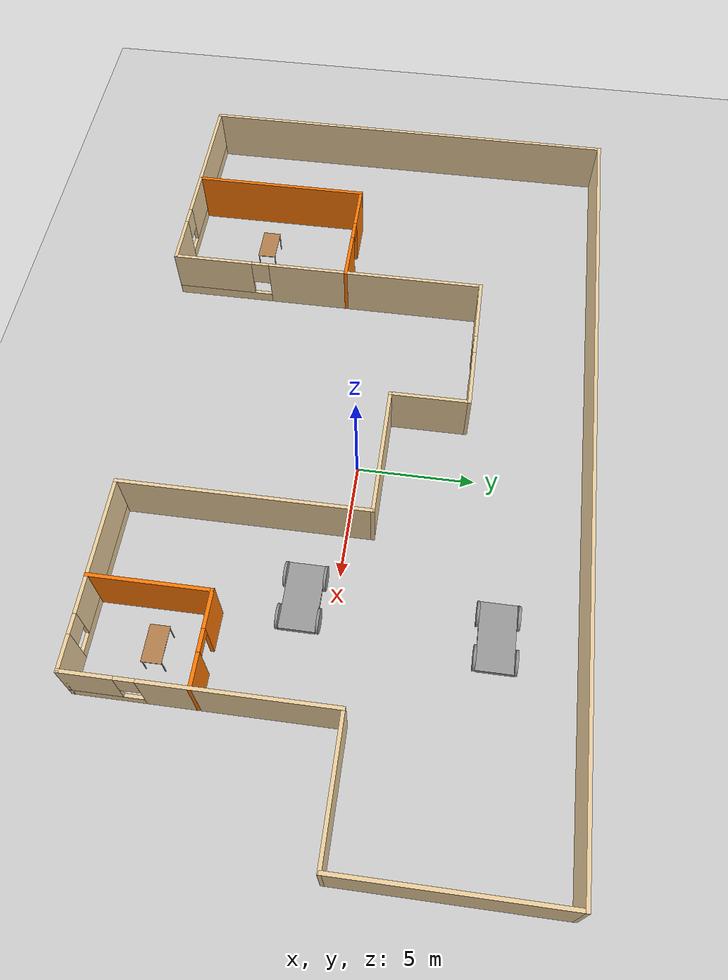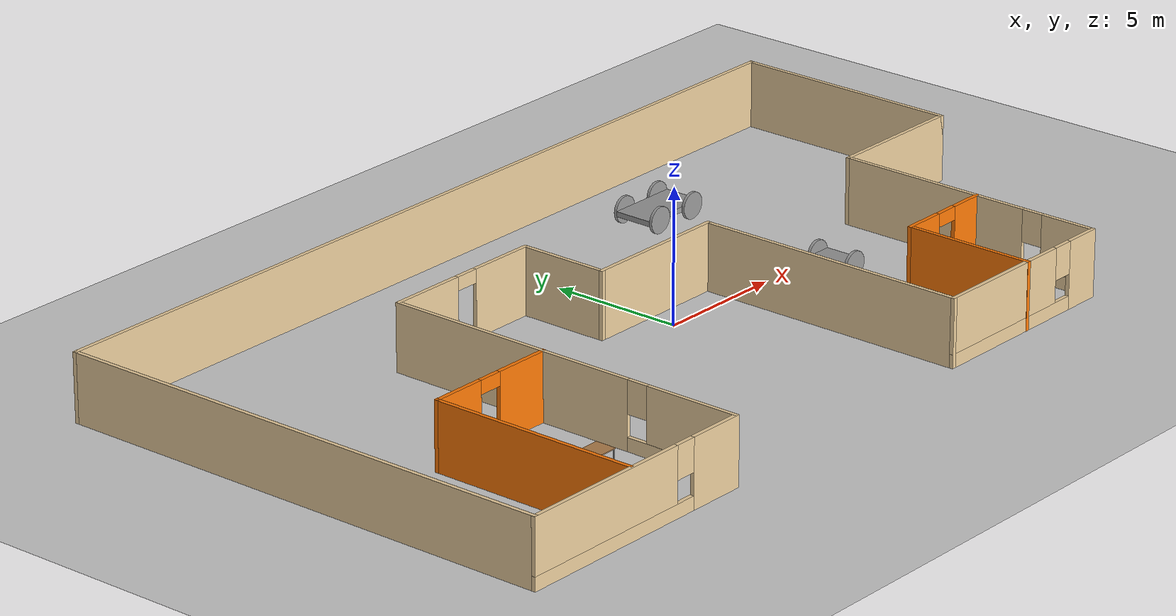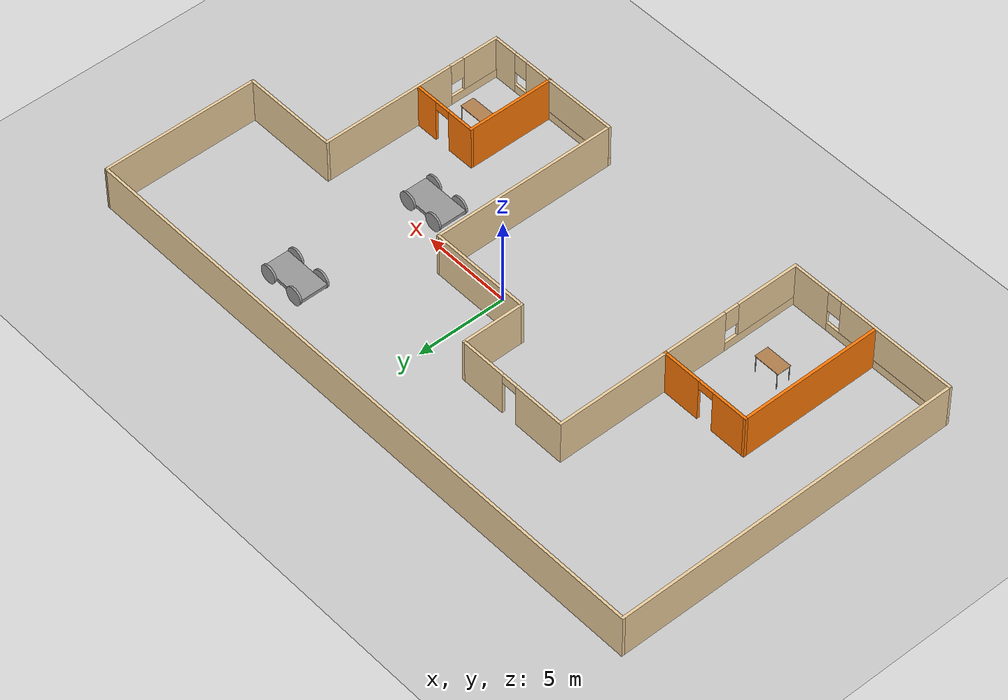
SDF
<sdf version="1.6">
 <world name="default">
  <model name="ground_plane">
   <static>1</static>
   <link name="link">
    <collision name="collision">
     <geometry><plane><normal>0 0 1</normal><size>100 100</size></plane></geometry>
     <surface><friction><ode><mu>100</mu><mu2>50</mu2></ode></friction></surface>
    </collision>
    <visual name="visual">
     <cast_shadows>0</cast_shadows>
     <geometry><plane><normal>0 0 1</normal><size>100 100</size></plane></geometry>
     <material>
      <script><uri>file://media/materials/scripts/gazebo.material</uri><name>Gazebo/Grey</name></script>
     </material>
    </visual>
   </link>
  </model>
  <light name="sun" type="directional">
   <pose>0 0 10 0 -0 0</pose>
   <diffuse>0.8 0.8 0.8 1</diffuse>
   <specular>0.2 0.2 0.2 1</specular>
   <attenuation>
    <range>1000</range>
    <constant>0.9</constant>
    <linear>0.01</linear>
    <quadratic>0.001</quadratic>
   </attenuation>
   <direction>-0.5 0.1 -0.9</direction>
  </light>
  <gravity>0 0 -9.8</gravity>
  <magnetic_field>6e-06 2.3e-05 -4.2e-05</magnetic_field>
  <atmosphere type="adiabatic"/>
  <physics name="default_physics" default="0" type="ode">
   <max_step_size>0.001</max_step_size>
   <real_time_factor>1</real_time_factor>
   <real_time_update_rate>1000</real_time_update_rate>
  </physics>
  <scene><ambient>0.4 0.4 0.4 1</ambient><background>0.7 0.7 0.7 1</background><shadows>1</shadows></scene>
  <spherical_coordinates>
   <surface_model>EARTH_WGS84</surface_model>
   <latitude_deg>0</latitude_deg>
   <longitude_deg>0</longitude_deg>
   <elevation>0</elevation>
   <heading_deg>0</heading_deg>
  </spherical_coordinates>
  <model name="appartment">
   <pose>-1.0607 0.00541 0 0 -0 0</pose>
   <link name="Wall_0">
    <collision name="Wall_0_Collision">
     <geometry><box><size>19.4596 0.15 2.5</size></box></geometry>
     <pose>0 0 1.25 0 -0 0</pose>
    </collision>
    <visual name="Wall_0_Visual">
     <pose>0 0 1.25 0 -0 0</pose>
     <geometry><box><size>19.4596 0.15 2.5</size></box></geometry>
     <material>
      <script><uri>file://media/materials/scripts/gazebo.material</uri><name>Gazebo/Grey</name></script>
      <ambient>0.921569 0.807843 0.615686 1</ambient>
     </material>
     <meta><layer>0</layer></meta>
    </visual>
    <pose>-17.4083 -0.020065 0 0 -0 1.5708</pose>
   </link>
   <link name="Wall_1">
    <collision name="Wall_1_Collision">
     <geometry><box><size>34.9669 0.15 2.5</size></box></geometry>
     <pose>0 0 1.25 0 -0 0</pose>
    </collision>
    <visual name="Wall_1_Visual">
     <pose>0 0 1.25 0 -0 0</pose>
     <geometry><box><size>34.9669 0.15 2.5</size></box></geometry>
     <material>
      <script><uri>file://media/materials/scripts/gazebo.material</uri><name>Gazebo/Grey</name></script>
      <ambient>0.921569 0.807843 0.615686 1</ambient>
     </material>
     <meta><layer>0</layer></meta>
    </visual>
    <pose>0 9.65496 0 0 -0 0.00115</pose>
   </link>
   <link name="Wall_10">
    <pose>-7.7415 -2.62504 0 0 0 -1.57076</pose>
    <visual name="Wall_10_Visual_0">
     <pose>-2.2093 0 1.25 0 -0 0</pose>
     <geometry><box><size>9.8314 0.15 2.5</size></box></geometry>
     <material>
      <script><uri>file://media/materials/scripts/gazebo.material</uri><name>Gazebo/Grey</name></script>
      <ambient>0.921569 0.807843 0.615686 1</ambient>
     </material>
     <meta><layer>0</layer></meta>
    </visual>
    <collision name="Wall_10_Collision_0">
     <geometry><box><size>9.8314 0.15 2.5</size></box></geometry>
     <pose>-2.2093 0 1.25 0 -0 0</pose>
    </collision>
    <visual name="Wall_10_Visual_1">
     <pose>4.9157 0 0.25 0 -0 0</pose>
     <geometry><box><size>4.4186 0.15 0.5</size></box></geometry>
     <material>
      <script><uri>file://media/materials/scripts/gazebo.material</uri><name>Gazebo/Grey</name></script>
      <ambient>0.921569 0.807843 0.615686 1</ambient>
     </material>
     <meta><layer>0</layer></meta>
    </visual>
    <collision name="Wall_10_Collision_1">
     <geometry><box><size>4.4186 0.15 0.5</size></box></geometry>
     <pose>4.9157 0 0.25 0 -0 0</pose>
    </collision>
    <visual name="Wall_10_Visual_2">
     <pose>5.3157 0 1.5 0 -0 0</pose>
     <geometry><box><size>3.6186 0.15 2</size></box></geometry>
     <material>
      <script><uri>file://media/materials/scripts/gazebo.material</uri><name>Gazebo/Grey</name></script>
      <ambient>0.921569 0.807843 0.615686 1</ambient>
     </material>
     <meta><layer>0</layer></meta>
    </visual>
    <collision name="Wall_10_Collision_2">
     <geometry><box><size>3.6186 0.15 2</size></box></geometry>
     <pose>5.3157 0 1.5 0 -0 0</pose>
    </collision>
    <visual name="Wall_10_Visual_3">
     <pose>3.1064 0 1.9 0 -0 0</pose>
     <geometry><box><size>0.8 0.15 1.2</size></box></geometry>
     <material>
      <script><uri>file://media/materials/scripts/gazebo.material</uri><name>Gazebo/Grey</name></script>
      <ambient>0.921569 0.807843 0.615686 1</ambient>
     </material>
     <meta><layer>0</layer></meta>
    </visual>
    <collision name="Wall_10_Collision_3">
     <geometry><box><size>0.8 0.15 1.2</size></box></geometry>
     <pose>3.1064 0 1.9 0 -0 0</pose>
    </collision>
   </link>
   <link name="Wall_11">
    <pose>-12.5748 -9.67507 0 0 -0 3.14159</pose>
    <visual name="Wall_11_Visual_0">
     <pose>-3.79039 0 1.25 0 -0 0</pose>
     <geometry><box><size>2.23622 0.15 2.5</size></box></geometry>
     <material>
      <script><uri>file://media/materials/scripts/gazebo.material</uri><name>Gazebo/Grey</name></script>
      <ambient>0.921569 0.807843 0.615686 1</ambient>
     </material>
     <meta><layer>0</layer></meta>
    </visual>
    <collision name="Wall_11_Collision_0">
     <geometry><box><size>2.23622 0.15 2.5</size></box></geometry>
     <pose>-3.79039 0 1.25 0 -0 0</pose>
    </collision>
    <visual name="Wall_11_Visual_1">
     <pose>1.11811 0 0.25 0 -0 0</pose>
     <geometry><box><size>7.58078 0.15 0.5</size></box></geometry>
     <material>
      <script><uri>file://media/materials/scripts/gazebo.material</uri><name>Gazebo/Grey</name></script>
      <ambient>0.921569 0.807843 0.615686 1</ambient>
     </material>
     <meta><layer>0</layer></meta>
    </visual>
    <collision name="Wall_11_Collision_1">
     <geometry><box><size>7.58078 0.15 0.5</size></box></geometry>
     <pose>1.11811 0 0.25 0 -0 0</pose>
    </collision>
    <visual name="Wall_11_Visual_2">
     <pose>1.51811 0 1.5 0 -0 0</pose>
     <geometry><box><size>6.78078 0.15 2</size></box></geometry>
     <material>
      <script><uri>file://media/materials/scripts/gazebo.material</uri><name>Gazebo/Grey</name></script>
      <ambient>0.921569 0.807843 0.615686 1</ambient>
     </material>
     <meta><layer>0</layer></meta>
    </visual>
    <collision name="Wall_11_Collision_2">
     <geometry><box><size>6.78078 0.15 2</size></box></geometry>
     <pose>1.51811 0 1.5 0 -0 0</pose>
    </collision>
    <visual name="Wall_11_Visual_3">
     <pose>-2.27228 0 1.9 0 -0 0</pose>
     <geometry><box><size>0.8 0.15 1.2</size></box></geometry>
     <material>
      <script><uri>file://media/materials/scripts/gazebo.material</uri><name>Gazebo/Grey</name></script>
      <ambient>0.921569 0.807843 0.615686 1</ambient>
     </material>
     <meta><layer>0</layer></meta>
    </visual>
    <collision name="Wall_11_Collision_3">
     <geometry><box><size>0.8 0.15 1.2</size></box></geometry>
     <pose>-2.27228 0 1.9 0 -0 0</pose>
    </collision>
   </link>
   <link name="Wall_13">
    <collision name="Wall_13_Collision">
     <geometry><box><size>5 0.15 2.5</size></box></geometry>
     <pose>0 0 1.25 0 -0 0</pose>
    </collision>
    <visual name="Wall_13_Visual">
     <pose>0 0 1.25 0 -0 0</pose>
     <geometry><box><size>5 0.15 2.5</size></box></geometry>
     <material>
      <script><uri>file://media/materials/scripts/gazebo.material</uri><name>Gazebo/Grey</name></script>
      <ambient>0.996078 0.47451 0.0196078 1</ambient>
     </material>
     <meta><layer>0</layer></meta>
    </visual>
    <pose>8.30689 -6.85928 0 0 -0 1.57087</pose>
   </link>
   <link name="Wall_14">
    <pose>10.1827 -4.43407 0 0 -0 0</pose>
    <visual name="Wall_14_Visual_0">
     <pose>-1.15332 0 1.25 0 -0 0</pose>
     <geometry><box><size>1.59536 0.15 2.5</size></box></geometry>
     <material>
      <script><uri>file://media/materials/scripts/gazebo.material</uri><name>Gazebo/Grey</name></script>
      <ambient>0.996078 0.47451 0.0196078 1</ambient>
     </material>
     <meta><layer>0</layer></meta>
    </visual>
    <collision name="Wall_14_Collision_0">
     <geometry><box><size>1.59536 0.15 2.5</size></box></geometry>
     <pose>-1.15332 0 1.25 0 -0 0</pose>
    </collision>
    <visual name="Wall_14_Visual_1">
     <pose>1.24768 0 1.25 0 -0 0</pose>
     <geometry><box><size>1.40664 0.15 2.5</size></box></geometry>
     <material>
      <script><uri>file://media/materials/scripts/gazebo.material</uri><name>Gazebo/Grey</name></script>
      <ambient>0.996078 0.47451 0.0196078 1</ambient>
     </material>
     <meta><layer>0</layer></meta>
    </visual>
    <collision name="Wall_14_Collision_1">
     <geometry><box><size>1.40664 0.15 2.5</size></box></geometry>
     <pose>1.24768 0 1.25 0 -0 0</pose>
    </collision>
    <visual name="Wall_14_Visual_2">
     <pose>0.094359 0 2.25 0 -0 0</pose>
     <geometry><box><size>0.9 0.15 0.5</size></box></geometry>
     <material>
      <script><uri>file://media/materials/scripts/gazebo.material</uri><name>Gazebo/Grey</name></script>
      <ambient>0.996078 0.47451 0.0196078 1</ambient>
     </material>
     <meta><layer>0</layer></meta>
    </visual>
    <collision name="Wall_14_Collision_2">
     <geometry><box><size>0.9 0.15 0.5</size></box></geometry>
     <pose>0.094359 0 2.25 0 -0 0</pose>
    </collision>
   </link>
   <link name="Wall_16">
    <pose>-10.2844 -1.75625 0 0 -0 3.14159</pose>
    <visual name="Wall_16_Visual_0">
     <pose>-1.4933 0 1.25 0 -0 0</pose>
     <geometry><box><size>2.26341 0.15 2.5</size></box></geometry>
     <material>
      <script><uri>file://media/materials/scripts/gazebo.material</uri><name>Gazebo/Grey</name></script>
      <ambient>0.996078 0.47451 0.0196078 1</ambient>
     </material>
     <meta><layer>0</layer></meta>
    </visual>
    <collision name="Wall_16_Collision_0">
     <geometry><box><size>2.26341 0.15 2.5</size></box></geometry>
     <pose>-1.4933 0 1.25 0 -0 0</pose>
    </collision>
    <visual name="Wall_16_Visual_1">
     <pose>1.5817 0 1.25 0 -0 0</pose>
     <geometry><box><size>2.08659 0.15 2.5</size></box></geometry>
     <material>
      <script><uri>file://media/materials/scripts/gazebo.material</uri><name>Gazebo/Grey</name></script>
      <ambient>0.996078 0.47451 0.0196078 1</ambient>
     </material>
     <meta><layer>0</layer></meta>
    </visual>
    <collision name="Wall_16_Collision_1">
     <geometry><box><size>2.08659 0.15 2.5</size></box></geometry>
     <pose>1.5817 0 1.25 0 -0 0</pose>
    </collision>
    <visual name="Wall_16_Visual_2">
     <pose>0.088408 0 2.25 0 -0 0</pose>
     <geometry><box><size>0.9 0.15 0.5</size></box></geometry>
     <material>
      <script><uri>file://media/materials/scripts/gazebo.material</uri><name>Gazebo/Grey</name></script>
      <ambient>0.996078 0.47451 0.0196078 1</ambient>
     </material>
     <meta><layer>0</layer></meta>
    </visual>
    <collision name="Wall_16_Collision_2">
     <geometry><box><size>0.9 0.15 0.5</size></box></geometry>
     <pose>0.088408 0 2.25 0 -0 0</pose>
    </collision>
   </link>
   <link name="Wall_17">
    <collision name="Wall_17_Collision">
     <geometry><box><size>8 0.15 2.5</size></box></geometry>
     <pose>0 0 1.25 0 -0 0</pose>
    </collision>
    <visual name="Wall_17_Visual">
     <pose>0 0 1.25 0 -0 0</pose>
     <geometry><box><size>8 0.15 2.5</size></box></geometry>
     <material>
      <script><uri>file://media/materials/scripts/gazebo.material</uri><name>Gazebo/Grey</name></script>
      <ambient>0.996078 0.47451 0.0196078 1</ambient>
     </material>
     <meta><layer>0</layer></meta>
    </visual>
    <pose>-12.8344 -5.68124 0 0 0 -1.5708</pose>
   </link>
   <link name="Wall_2">
    <collision name="Wall_2_Collision">
     <geometry><box><size>8.75 0.15 2.5</size></box></geometry>
     <pose>0 0 1.25 0 -0 0</pose>
    </collision>
    <visual name="Wall_2_Visual">
     <pose>0 0 1.25 0 -0 0</pose>
     <geometry><box><size>8.75 0.15 2.5</size></box></geometry>
     <material>
      <script><uri>file://media/materials/scripts/gazebo.material</uri><name>Gazebo/Grey</name></script>
      <ambient>0.921569 0.807843 0.615686 1</ambient>
     </material>
     <meta><layer>0</layer></meta>
    </visual>
    <pose>17.4083 5.37498 0 0 0 -1.5708</pose>
   </link>
   <link name="Wall_3">
    <collision name="Wall_3_Collision">
     <geometry><box><size>5.5 0.15 2.5</size></box></geometry>
     <pose>0 0 1.25 0 -0 0</pose>
    </collision>
    <visual name="Wall_3_Visual">
     <pose>0 0 1.25 0 -0 0</pose>
     <geometry><box><size>5.5 0.15 2.5</size></box></geometry>
     <material>
      <script><uri>file://media/materials/scripts/gazebo.material</uri><name>Gazebo/Grey</name></script>
      <ambient>0.921569 0.807843 0.615686 1</ambient>
     </material>
     <meta><layer>0</layer></meta>
    </visual>
    <pose>14.7333 1.07498 0 0 -0 3.14159</pose>
   </link>
   <link name="Wall_4">
    <pose>12.0583 -4.10002 0 0 0 -1.5708</pose>
    <visual name="Wall_4_Visual_0">
     <pose>-1.46402 0 1.25 0 -0 0</pose>
     <geometry><box><size>7.57196 0.15 2.5</size></box></geometry>
     <material>
      <script><uri>file://media/materials/scripts/gazebo.material</uri><name>Gazebo/Grey</name></script>
      <ambient>0.921569 0.807843 0.615686 1</ambient>
     </material>
     <meta><layer>0</layer></meta>
    </visual>
    <collision name="Wall_4_Collision_0">
     <geometry><box><size>7.57196 0.15 2.5</size></box></geometry>
     <pose>-1.46402 0 1.25 0 -0 0</pose>
    </collision>
    <visual name="Wall_4_Visual_1">
     <pose>3.78598 0 0.25 0 -0 0</pose>
     <geometry><box><size>2.92803 0.15 0.5</size></box></geometry>
     <material>
      <script><uri>file://media/materials/scripts/gazebo.material</uri><name>Gazebo/Grey</name></script>
      <ambient>0.921569 0.807843 0.615686 1</ambient>
     </material>
     <meta><layer>0</layer></meta>
    </visual>
    <collision name="Wall_4_Collision_1">
     <geometry><box><size>2.92803 0.15 0.5</size></box></geometry>
     <pose>3.78598 0 0.25 0 -0 0</pose>
    </collision>
    <visual name="Wall_4_Visual_2">
     <pose>4.18598 0 1.5 0 -0 0</pose>
     <geometry><box><size>2.12804 0.15 2</size></box></geometry>
     <material>
      <script><uri>file://media/materials/scripts/gazebo.material</uri><name>Gazebo/Grey</name></script>
      <ambient>0.921569 0.807843 0.615686 1</ambient>
     </material>
     <meta><layer>0</layer></meta>
    </visual>
    <collision name="Wall_4_Collision_2">
     <geometry><box><size>2.12804 0.15 2</size></box></geometry>
     <pose>4.18598 0 1.5 0 -0 0</pose>
    </collision>
    <visual name="Wall_4_Visual_3">
     <pose>2.72196 0 1.9 0 -0 0</pose>
     <geometry><box><size>0.8 0.15 1.2</size></box></geometry>
     <material>
      <script><uri>file://media/materials/scripts/gazebo.material</uri><name>Gazebo/Grey</name></script>
      <ambient>0.921569 0.807843 0.615686 1</ambient>
     </material>
     <meta><layer>0</layer></meta>
    </visual>
    <collision name="Wall_4_Collision_3">
     <geometry><box><size>0.8 0.15 1.2</size></box></geometry>
     <pose>2.72196 0 1.9 0 -0 0</pose>
    </collision>
   </link>
   <link name="Wall_5">
    <pose>8.13328 -9.27502 0 0 -0 3.14159</pose>
    <visual name="Wall_5_Visual_0">
     <pose>-3.2719 0 1.25 0 -0 0</pose>
     <geometry><box><size>1.4562 0.15 2.5</size></box></geometry>
     <material>
      <script><uri>file://media/materials/scripts/gazebo.material</uri><name>Gazebo/Grey</name></script>
      <ambient>0.921569 0.807843 0.615686 1</ambient>
     </material>
     <meta><layer>0</layer></meta>
    </visual>
    <collision name="Wall_5_Collision_0">
     <geometry><box><size>1.4562 0.15 2.5</size></box></geometry>
     <pose>-3.2719 0 1.25 0 -0 0</pose>
    </collision>
    <visual name="Wall_5_Visual_1">
     <pose>0.728102 0 0.25 0 -0 0</pose>
     <geometry><box><size>6.5438 0.15 0.5</size></box></geometry>
     <material>
      <script><uri>file://media/materials/scripts/gazebo.material</uri><name>Gazebo/Grey</name></script>
      <ambient>0.921569 0.807843 0.615686 1</ambient>
     </material>
     <meta><layer>0</layer></meta>
    </visual>
    <collision name="Wall_5_Collision_1">
     <geometry><box><size>6.5438 0.15 0.5</size></box></geometry>
     <pose>0.728102 0 0.25 0 -0 0</pose>
    </collision>
    <visual name="Wall_5_Visual_2">
     <pose>1.1281 0 1.5 0 -0 0</pose>
     <geometry><box><size>5.7438 0.15 2</size></box></geometry>
     <material>
      <script><uri>file://media/materials/scripts/gazebo.material</uri><name>Gazebo/Grey</name></script>
      <ambient>0.921569 0.807843 0.615686 1</ambient>
     </material>
     <meta><layer>0</layer></meta>
    </visual>
    <collision name="Wall_5_Collision_2">
     <geometry><box><size>5.7438 0.15 2</size></box></geometry>
     <pose>1.1281 0 1.5 0 -0 0</pose>
    </collision>
    <visual name="Wall_5_Visual_3">
     <pose>-2.14379 0 1.9 0 -0 0</pose>
     <geometry><box><size>0.8 0.15 1.2</size></box></geometry>
     <material>
      <script><uri>file://media/materials/scripts/gazebo.material</uri><name>Gazebo/Grey</name></script>
      <ambient>0.921569 0.807843 0.615686 1</ambient>
     </material>
     <meta><layer>0</layer></meta>
    </visual>
    <collision name="Wall_5_Collision_3">
     <geometry><box><size>0.8 0.15 1.2</size></box></geometry>
     <pose>-2.14379 0 1.9 0 -0 0</pose>
    </collision>
   </link>
   <link name="Wall_6">
    <collision name="Wall_6_Collision">
     <geometry><box><size>10.5 0.15 2.5</size></box></geometry>
     <pose>0 0 1.25 0 -0 0</pose>
    </collision>
    <visual name="Wall_6_Visual">
     <pose>0 0 1.25 0 -0 0</pose>
     <geometry><box><size>10.5 0.15 2.5</size></box></geometry>
     <material>
      <script><uri>file://media/materials/scripts/gazebo.material</uri><name>Gazebo/Grey</name></script>
      <ambient>0.921569 0.807843 0.615686 1</ambient>
     </material>
     <meta><layer>0</layer></meta>
    </visual>
    <pose>4.20828 -4.10002 0 0 -0 1.5708</pose>
   </link>
   <link name="Wall_7">
    <collision name="Wall_7_Collision">
     <geometry><box><size>5.75 0.15 2.5</size></box></geometry>
     <pose>0 0 1.25 0 -0 0</pose>
    </collision>
    <visual name="Wall_7_Visual">
     <pose>0 0 1.25 0 -0 0</pose>
     <geometry><box><size>5.75 0.15 2.5</size></box></geometry>
     <material>
      <script><uri>file://media/materials/scripts/gazebo.material</uri><name>Gazebo/Grey</name></script>
      <ambient>0.921569 0.807843 0.615686 1</ambient>
     </material>
     <meta><layer>0</layer></meta>
    </visual>
    <pose>1.40828 1.07498 0 0 -0 3.14159</pose>
   </link>
   <link name="Wall_8">
    <collision name="Wall_8_Collision">
     <geometry><box><size>3.5 0.15 2.5</size></box></geometry>
     <pose>0 0 1.25 0 -0 0</pose>
    </collision>
    <visual name="Wall_8_Visual">
     <pose>0 0 1.25 0 -0 0</pose>
     <geometry><box><size>3.5 0.15 2.5</size></box></geometry>
     <material>
      <script><uri>file://media/materials/scripts/gazebo.material</uri><name>Gazebo/Grey</name></script>
      <ambient>0.921569 0.807843 0.615686 1</ambient>
     </material>
     <meta><layer>0</layer></meta>
    </visual>
    <pose>-1.39172 2.74998 0 0 -0 1.5708</pose>
   </link>
   <link name="Wall_9">
    <pose>-4.56672 4.42498 0 0 -0 3.14159</pose>
    <visual name="Wall_9_Visual_0">
     <pose>-1.91954 0 1.25 0 -0 0</pose>
     <geometry><box><size>2.66093 0.15 2.5</size></box></geometry>
     <material>
      <script><uri>file://media/materials/scripts/gazebo.material</uri><name>Gazebo/Grey</name></script>
      <ambient>0.921569 0.807843 0.615686 1</ambient>
     </material>
     <meta><layer>0</layer></meta>
    </visual>
    <collision name="Wall_9_Collision_0">
     <geometry><box><size>2.66093 0.15 2.5</size></box></geometry>
     <pose>-1.91954 0 1.25 0 -0 0</pose>
    </collision>
    <visual name="Wall_9_Visual_1">
     <pose>1.78046 0 1.25 0 -0 0</pose>
     <geometry><box><size>2.93907 0.15 2.5</size></box></geometry>
     <material>
      <script><uri>file://media/materials/scripts/gazebo.material</uri><name>Gazebo/Grey</name></script>
      <ambient>0.921569 0.807843 0.615686 1</ambient>
     </material>
     <meta><layer>0</layer></meta>
    </visual>
    <collision name="Wall_9_Collision_1">
     <geometry><box><size>2.93907 0.15 2.5</size></box></geometry>
     <pose>1.78046 0 1.25 0 -0 0</pose>
    </collision>
    <visual name="Wall_9_Visual_2">
     <pose>-0.139072 0 2.25 0 -0 0</pose>
     <geometry><box><size>0.9 0.15 0.5</size></box></geometry>
     <material>
      <script><uri>file://media/materials/scripts/gazebo.material</uri><name>Gazebo/Grey</name></script>
      <ambient>0.921569 0.807843 0.615686 1</ambient>
     </material>
     <meta><layer>0</layer></meta>
    </visual>
    <collision name="Wall_9_Collision_2">
     <geometry><box><size>0.9 0.15 0.5</size></box></geometry>
     <pose>-0.139072 0 2.25 0 -0 0</pose>
    </collision>
   </link>
   <static>1</static>
  </model>
  <model name="robot">
   <link name="link_0">
    <pose>-1e-06 -2e-06 -0.017894 0 -0 0</pose>
    <inertial>
     <mass>0.791661</mass>
     <inertia>
      <ixx>0.14552</ixx>
      <ixy>0</ixy>
      <ixz>0</ixz>
      <iyy>0.516326</iyy>
      <iyz>0</iyz>
      <izz>0.656947</izz>
     </inertia>
    </inertial>
    <visual name="visual">
     <geometry><box><size>2.79094 1.47264 0.192699</size></box></geometry>
     <material>
      <lighting>1</lighting>
      <script><uri>file://media/materials/scripts/gazebo.material</uri><name>Gazebo/Grey</name></script>
      <shader type="pixel"/>
      <ambient>0.3 0.3 0.3 1</ambient>
      <diffuse>0.7 0.7 0.7 1</diffuse>
      <specular>0.01 0.01 0.01 1</specular>
      <emissive>0 0 0 1</emissive>
     </material>
    </visual>
    <collision name="collision">
     <geometry><box><size>2.79094 1.47264 0.192699</size></box></geometry>
     <surface>
      <friction>
       <ode><mu>1</mu><mu2>1</mu2><fdir1>0 0 0</fdir1><slip1>0</slip1><slip2>0</slip2></ode>
       <torsional>
        <coefficient>1</coefficient>
        <patch_radius>0</patch_radius>
        <surface_radius>0</surface_radius>
        <use_patch_radius>1</use_patch_radius>
        <ode><slip>0</slip></ode>
       </torsional>
      </friction>
      <bounce><restitution_coefficient>0</restitution_coefficient><threshold>1e+06</threshold></bounce>
      <contact>
       <collide_without_contact>0</collide_without_contact>
       <collide_without_contact_bitmask>1</collide_without_contact_bitmask>
       <collide_bitmask>1</collide_bitmask>
       <ode>
        <soft_cfm>0</soft_cfm>
        <soft_erp>0.2</soft_erp>
        <kp>1e+13</kp>
        <kd>1</kd>
        <max_vel>0.01</max_vel>
        <min_depth>0</min_depth>
       </ode>
       <bullet>
        <split_impulse>1</split_impulse>
        <split_impulse_penetration_threshold>-0.01</split_impulse_penetration_threshold>
        <soft_cfm>0</soft_cfm>
        <soft_erp>0.2</soft_erp>
        <kp>1e+13</kp>
        <kd>1</kd>
       </bullet>
      </contact>
     </surface>
    </collision>
   </link>
   <link name="link_1">
    <pose>0.895468 -0.796371 0.004474 1.58338 -0 0</pose>
    <inertial>
     <mass>0.107521</mass>
     <inertia>
      <ixx>0.00682364</ixx>
      <ixy>0</ixy>
      <ixz>0</ixz>
      <iyy>0.00682364</iyy>
      <iyz>0</iyz>
      <izz>0.0134401</izz>
     </inertia>
    </inertial>
    <visual name="visual">
     <geometry><cylinder><radius>0.5</radius><length>0.107521</length></cylinder></geometry>
     <material>
      <lighting>1</lighting>
      <script><uri>file://media/materials/scripts/gazebo.material</uri><name>Gazebo/Grey</name></script>
      <shader type="pixel"><normal_map>__default__</normal_map></shader>
      <ambient>0.3 0.3 0.3 1</ambient>
      <diffuse>0.7 0.7 0.7 1</diffuse>
      <specular>0.01 0.01 0.01 1</specular>
      <emissive>0 0 0 1</emissive>
     </material>
    </visual>
    <collision name="collision">
     <geometry><cylinder><radius>0.5</radius><length>0.107521</length></cylinder></geometry>
     <surface>
      <friction>
       <ode><mu>1</mu><mu2>1</mu2><fdir1>0 0 0</fdir1><slip1>0</slip1><slip2>0</slip2></ode>
       <torsional>
        <coefficient>1</coefficient>
        <patch_radius>0</patch_radius>
        <surface_radius>0</surface_radius>
        <use_patch_radius>1</use_patch_radius>
        <ode><slip>0</slip></ode>
       </torsional>
      </friction>
      <bounce><restitution_coefficient>0</restitution_coefficient><threshold>1e+06</threshold></bounce>
      <contact>
       <collide_without_contact>0</collide_without_contact>
       <collide_without_contact_bitmask>1</collide_without_contact_bitmask>
       <collide_bitmask>1</collide_bitmask>
       <ode>
        <soft_cfm>0</soft_cfm>
        <soft_erp>0.2</soft_erp>
        <kp>1e+13</kp>
        <kd>1</kd>
        <max_vel>0.01</max_vel>
        <min_depth>0</min_depth>
       </ode>
       <bullet>
        <split_impulse>1</split_impulse>
        <split_impulse_penetration_threshold>-0.01</split_impulse_penetration_threshold>
        <soft_cfm>0</soft_cfm>
        <soft_erp>0.2</soft_erp>
        <kp>1e+13</kp>
        <kd>1</kd>
       </bullet>
      </contact>
     </surface>
    </collision>
   </link>
   <link name="link_1_clone">
    <pose>0.895468 0.796367 0.004474 1.58338 -0 0</pose>
    <inertial>
     <mass>0.107521</mass>
     <inertia>
      <ixx>0.00682364</ixx>
      <ixy>0</ixy>
      <ixz>0</ixz>
      <iyy>0.00682364</iyy>
      <iyz>0</iyz>
      <izz>0.0134401</izz>
     </inertia>
    </inertial>
    <visual name="visual">
     <geometry><cylinder><radius>0.5</radius><length>0.107521</length></cylinder></geometry>
     <material>
      <lighting>1</lighting>
      <script><uri>file://media/materials/scripts/gazebo.material</uri><name>Gazebo/Grey</name></script>
      <shader type="pixel"><normal_map>__default__</normal_map></shader>
      <ambient>0.3 0.3 0.3 1</ambient>
      <diffuse>0.7 0.7 0.7 1</diffuse>
      <specular>0.01 0.01 0.01 1</specular>
      <emissive>0 0 0 1</emissive>
     </material>
    </visual>
    <collision name="collision">
     <geometry><cylinder><radius>0.5</radius><length>0.107521</length></cylinder></geometry>
     <surface>
      <friction>
       <ode><mu>1</mu><mu2>1</mu2><fdir1>0 0 0</fdir1><slip1>0</slip1><slip2>0</slip2></ode>
       <torsional>
        <coefficient>1</coefficient>
        <patch_radius>0</patch_radius>
        <surface_radius>0</surface_radius>
        <use_patch_radius>1</use_patch_radius>
        <ode><slip>0</slip></ode>
       </torsional>
      </friction>
      <bounce><restitution_coefficient>0</restitution_coefficient><threshold>1e+06</threshold></bounce>
      <contact>
       <collide_without_contact>0</collide_without_contact>
       <collide_without_contact_bitmask>1</collide_without_contact_bitmask>
       <collide_bitmask>1</collide_bitmask>
       <ode>
        <soft_cfm>0</soft_cfm>
        <soft_erp>0.2</soft_erp>
        <kp>1e+13</kp>
        <kd>1</kd>
        <max_vel>0.01</max_vel>
        <min_depth>0</min_depth>
       </ode>
       <bullet>
        <split_impulse>1</split_impulse>
        <split_impulse_penetration_threshold>-0.01</split_impulse_penetration_threshold>
        <soft_cfm>0</soft_cfm>
        <soft_erp>0.2</soft_erp>
        <kp>1e+13</kp>
        <kd>1</kd>
       </bullet>
      </contact>
     </surface>
    </collision>
   </link>
   <link name="link_1_clone_clone">
    <pose>-0.895471 -0.796371 0.004474 1.58338 -0 0</pose>
    <inertial>
     <mass>0.107521</mass>
     <inertia>
      <ixx>0.00682364</ixx>
      <ixy>0</ixy>
      <ixz>0</ixz>
      <iyy>0.00682364</iyy>
      <iyz>0</iyz>
      <izz>0.0134401</izz>
     </inertia>
    </inertial>
    <visual name="visual">
     <geometry><cylinder><radius>0.5</radius><length>0.107521</length></cylinder></geometry>
     <material>
      <lighting>1</lighting>
      <script><uri>file://media/materials/scripts/gazebo.material</uri><name>Gazebo/Grey</name></script>
      <shader type="pixel"><normal_map>__default__</normal_map></shader>
      <ambient>0.3 0.3 0.3 1</ambient>
      <diffuse>0.7 0.7 0.7 1</diffuse>
      <specular>0.01 0.01 0.01 1</specular>
      <emissive>0 0 0 1</emissive>
     </material>
    </visual>
    <collision name="collision">
     <geometry><cylinder><radius>0.5</radius><length>0.107521</length></cylinder></geometry>
     <surface>
      <friction>
       <ode><mu>1</mu><mu2>1</mu2><fdir1>0 0 0</fdir1><slip1>0</slip1><slip2>0</slip2></ode>
       <torsional>
        <coefficient>1</coefficient>
        <patch_radius>0</patch_radius>
        <surface_radius>0</surface_radius>
        <use_patch_radius>1</use_patch_radius>
        <ode><slip>0</slip></ode>
       </torsional>
      </friction>
      <bounce><restitution_coefficient>0</restitution_coefficient><threshold>1e+06</threshold></bounce>
      <contact>
       <collide_without_contact>0</collide_without_contact>
       <collide_without_contact_bitmask>1</collide_without_contact_bitmask>
       <collide_bitmask>1</collide_bitmask>
       <ode>
        <soft_cfm>0</soft_cfm>
        <soft_erp>0.2</soft_erp>
        <kp>1e+13</kp>
        <kd>1</kd>
        <max_vel>0.01</max_vel>
        <min_depth>0</min_depth>
       </ode>
       <bullet>
        <split_impulse>1</split_impulse>
        <split_impulse_penetration_threshold>-0.01</split_impulse_penetration_threshold>
        <soft_cfm>0</soft_cfm>
        <soft_erp>0.2</soft_erp>
        <kp>1e+13</kp>
        <kd>1</kd>
       </bullet>
      </contact>
     </surface>
    </collision>
   </link>
   <link name="link_1_clone_clone_clone">
    <pose>-0.895471 0.796367 0.004474 1.58338 -0 0</pose>
    <inertial>
     <mass>0.107521</mass>
     <inertia>
      <ixx>0.00682364</ixx>
      <ixy>0</ixy>
      <ixz>0</ixz>
      <iyy>0.00682364</iyy>
      <iyz>0</iyz>
      <izz>0.0134401</izz>
     </inertia>
    </inertial>
    <visual name="visual">
     <geometry><cylinder><radius>0.5</radius><length>0.107521</length></cylinder></geometry>
     <material>
      <lighting>1</lighting>
      <script><uri>file://media/materials/scripts/gazebo.material</uri><name>Gazebo/Grey</name></script>
      <shader type="pixel"><normal_map>__default__</normal_map></shader>
      <ambient>0.3 0.3 0.3 1</ambient>
      <diffuse>0.7 0.7 0.7 1</diffuse>
      <specular>0.01 0.01 0.01 1</specular>
      <emissive>0 0 0 1</emissive>
     </material>
    </visual>
    <collision name="collision">
     <geometry><cylinder><radius>0.5</radius><length>0.107521</length></cylinder></geometry>
     <surface>
      <friction>
       <ode><mu>1</mu><mu2>1</mu2><fdir1>0 0 0</fdir1><slip1>0</slip1><slip2>0</slip2></ode>
       <torsional>
        <coefficient>1</coefficient>
        <patch_radius>0</patch_radius>
        <surface_radius>0</surface_radius>
        <use_patch_radius>1</use_patch_radius>
        <ode><slip>0</slip></ode>
       </torsional>
      </friction>
      <bounce><restitution_coefficient>0</restitution_coefficient><threshold>1e+06</threshold></bounce>
      <contact>
       <collide_without_contact>0</collide_without_contact>
       <collide_without_contact_bitmask>1</collide_without_contact_bitmask>
       <collide_bitmask>1</collide_bitmask>
       <ode>
        <soft_cfm>0</soft_cfm>
        <soft_erp>0.2</soft_erp>
        <kp>1e+13</kp>
        <kd>1</kd>
        <max_vel>0.01</max_vel>
        <min_depth>0</min_depth>
       </ode>
       <bullet>
        <split_impulse>1</split_impulse>
        <split_impulse_penetration_threshold>-0.01</split_impulse_penetration_threshold>
        <soft_cfm>0</soft_cfm>
        <soft_erp>0.2</soft_erp>
        <kp>1e+13</kp>
        <kd>1</kd>
       </bullet>
      </contact>
     </surface>
    </collision>
   </link>
   <joint name="link_0_JOINT_0" type="revolute">
    <parent>link_0</parent>
    <child>link_1</child>
    <axis>
     <xyz>1 0 0</xyz>
     <use_parent_model_frame>0</use_parent_model_frame>
     <limit>
      <lower>-1.79769e+308</lower>
      <upper>1.79769e+308</upper>
      <effort>-1</effort>
      <velocity>-1</velocity>
     </limit>
     <dynamics>
      <spring_reference>0</spring_reference>
      <spring_stiffness>0</spring_stiffness>
      <damping>0</damping>
     </dynamics>
    </axis>
    <physics>
     <ode><limit><cfm>0</cfm><erp>0.2</erp></limit><suspension><cfm>0</cfm><erp>0.2</erp></suspension></ode>
    </physics>
   </joint>
   <joint name="link_0_JOINT_1" type="revolute">
    <parent>link_0</parent>
    <child>link_1_clone</child>
    <axis>
     <xyz>1 0 0</xyz>
     <use_parent_model_frame>0</use_parent_model_frame>
     <limit>
      <lower>-1.79769e+308</lower>
      <upper>1.79769e+308</upper>
      <effort>-1</effort>
      <velocity>-1</velocity>
     </limit>
     <dynamics>
      <spring_reference>0</spring_reference>
      <spring_stiffness>0</spring_stiffness>
      <damping>0</damping>
     </dynamics>
    </axis>
    <physics>
     <ode><limit><cfm>0</cfm><erp>0.2</erp></limit><suspension><cfm>0</cfm><erp>0.2</erp></suspension></ode>
    </physics>
   </joint>
   <joint name="link_0_JOINT_2" type="revolute">
    <parent>link_0</parent>
    <child>link_1_clone_clone</child>
    <axis>
     <xyz>1 0 0</xyz>
     <use_parent_model_frame>0</use_parent_model_frame>
     <limit>
      <lower>-1.79769e+308</lower>
      <upper>1.79769e+308</upper>
      <effort>-1</effort>
      <velocity>-1</velocity>
     </limit>
     <dynamics>
      <spring_reference>0</spring_reference>
      <spring_stiffness>0</spring_stiffness>
      <damping>0</damping>
     </dynamics>
    </axis>
    <physics>
     <ode><limit><cfm>0</cfm><erp>0.2</erp></limit><suspension><cfm>0</cfm><erp>0.2</erp></suspension></ode>
    </physics>
   </joint>
   <joint name="link_0_JOINT_3" type="revolute">
    <parent>link_0</parent>
    <child>link_1_clone_clone_clone</child>
    <axis>
     <xyz>1 0 0</xyz>
     <use_parent_model_frame>0</use_parent_model_frame>
     <limit>
      <lower>-1.79769e+308</lower>
      <upper>1.79769e+308</upper>
      <effort>-1</effort>
      <velocity>-1</velocity>
     </limit>
     <dynamics>
      <spring_reference>0</spring_reference>
      <spring_stiffness>0</spring_stiffness>
      <damping>0</damping>
     </dynamics>
    </axis>
    <physics>
     <ode><limit><cfm>0</cfm><erp>0.2</erp></limit><suspension><cfm>0</cfm><erp>0.2</erp></suspension></ode>
    </physics>
   </joint>
   <static>0</static>
   <pose>6.29416 -1.30332 0.495526 0 0 -0.000112</pose>
  </model>
  <model name="robot_0">
   <link name="link_0">
    <pose>-1e-06 -2e-06 -0.017894 0 -0 0</pose>
    <inertial>
     <mass>0.791661</mass>
     <inertia>
      <ixx>0.14552</ixx>
      <ixy>0</ixy>
      <ixz>0</ixz>
      <iyy>0.516326</iyy>
      <iyz>0</iyz>
      <izz>0.656947</izz>
     </inertia>
    </inertial>
    <visual name="visual">
     <geometry><box><size>2.79094 1.47264 0.192699</size></box></geometry>
     <material>
      <lighting>1</lighting>
      <script><uri>file://media/materials/scripts/gazebo.material</uri><name>Gazebo/Grey</name></script>
      <shader type="pixel"/>
      <ambient>0.3 0.3 0.3 1</ambient>
      <diffuse>0.7 0.7 0.7 1</diffuse>
      <specular>0.01 0.01 0.01 1</specular>
      <emissive>0 0 0 1</emissive>
     </material>
    </visual>
    <collision name="collision">
     <geometry><box><size>2.79094 1.47264 0.192699</size></box></geometry>
     <surface>
      <friction>
       <ode><mu>1</mu><mu2>1</mu2><fdir1>0 0 0</fdir1><slip1>0</slip1><slip2>0</slip2></ode>
       <torsional>
        <coefficient>1</coefficient>
        <patch_radius>0</patch_radius>
        <surface_radius>0</surface_radius>
        <use_patch_radius>1</use_patch_radius>
        <ode><slip>0</slip></ode>
       </torsional>
      </friction>
      <bounce><restitution_coefficient>0</restitution_coefficient><threshold>1e+06</threshold></bounce>
      <contact>
       <collide_without_contact>0</collide_without_contact>
       <collide_without_contact_bitmask>1</collide_without_contact_bitmask>
       <collide_bitmask>1</collide_bitmask>
       <ode>
        <soft_cfm>0</soft_cfm>
        <soft_erp>0.2</soft_erp>
        <kp>1e+13</kp>
        <kd>1</kd>
        <max_vel>0.01</max_vel>
        <min_depth>0</min_depth>
       </ode>
       <bullet>
        <split_impulse>1</split_impulse>
        <split_impulse_penetration_threshold>-0.01</split_impulse_penetration_threshold>
        <soft_cfm>0</soft_cfm>
        <soft_erp>0.2</soft_erp>
        <kp>1e+13</kp>
        <kd>1</kd>
       </bullet>
      </contact>
     </surface>
    </collision>
   </link>
   <link name="link_1">
    <pose>0.895468 -0.796371 0.004474 1.58338 -0 0</pose>
    <inertial>
     <mass>0.107521</mass>
     <inertia>
      <ixx>0.00682364</ixx>
      <ixy>0</ixy>
      <ixz>0</ixz>
      <iyy>0.00682364</iyy>
      <iyz>0</iyz>
      <izz>0.0134401</izz>
     </inertia>
    </inertial>
    <visual name="visual">
     <geometry><cylinder><radius>0.5</radius><length>0.107521</length></cylinder></geometry>
     <material>
      <lighting>1</lighting>
      <script><uri>file://media/materials/scripts/gazebo.material</uri><name>Gazebo/Grey</name></script>
      <shader type="pixel"><normal_map>__default__</normal_map></shader>
      <ambient>0.3 0.3 0.3 1</ambient>
      <diffuse>0.7 0.7 0.7 1</diffuse>
      <specular>0.01 0.01 0.01 1</specular>
      <emissive>0 0 0 1</emissive>
     </material>
    </visual>
    <collision name="collision">
     <geometry><cylinder><radius>0.5</radius><length>0.107521</length></cylinder></geometry>
     <surface>
      <friction>
       <ode><mu>1</mu><mu2>1</mu2><fdir1>0 0 0</fdir1><slip1>0</slip1><slip2>0</slip2></ode>
       <torsional>
        <coefficient>1</coefficient>
        <patch_radius>0</patch_radius>
        <surface_radius>0</surface_radius>
        <use_patch_radius>1</use_patch_radius>
        <ode><slip>0</slip></ode>
       </torsional>
      </friction>
      <bounce><restitution_coefficient>0</restitution_coefficient><threshold>1e+06</threshold></bounce>
      <contact>
       <collide_without_contact>0</collide_without_contact>
       <collide_without_contact_bitmask>1</collide_without_contact_bitmask>
       <collide_bitmask>1</collide_bitmask>
       <ode>
        <soft_cfm>0</soft_cfm>
        <soft_erp>0.2</soft_erp>
        <kp>1e+13</kp>
        <kd>1</kd>
        <max_vel>0.01</max_vel>
        <min_depth>0</min_depth>
       </ode>
       <bullet>
        <split_impulse>1</split_impulse>
        <split_impulse_penetration_threshold>-0.01</split_impulse_penetration_threshold>
        <soft_cfm>0</soft_cfm>
        <soft_erp>0.2</soft_erp>
        <kp>1e+13</kp>
        <kd>1</kd>
       </bullet>
      </contact>
     </surface>
    </collision>
   </link>
   <link name="link_1_clone">
    <pose>0.895468 0.796367 0.004474 1.58338 -0 0</pose>
    <inertial>
     <mass>0.107521</mass>
     <inertia>
      <ixx>0.00682364</ixx>
      <ixy>0</ixy>
      <ixz>0</ixz>
      <iyy>0.00682364</iyy>
      <iyz>0</iyz>
      <izz>0.0134401</izz>
     </inertia>
    </inertial>
    <visual name="visual">
     <geometry><cylinder><radius>0.5</radius><length>0.107521</length></cylinder></geometry>
     <material>
      <lighting>1</lighting>
      <script><uri>file://media/materials/scripts/gazebo.material</uri><name>Gazebo/Grey</name></script>
      <shader type="pixel"><normal_map>__default__</normal_map></shader>
      <ambient>0.3 0.3 0.3 1</ambient>
      <diffuse>0.7 0.7 0.7 1</diffuse>
      <specular>0.01 0.01 0.01 1</specular>
      <emissive>0 0 0 1</emissive>
     </material>
    </visual>
    <collision name="collision">
     <geometry><cylinder><radius>0.5</radius><length>0.107521</length></cylinder></geometry>
     <surface>
      <friction>
       <ode><mu>1</mu><mu2>1</mu2><fdir1>0 0 0</fdir1><slip1>0</slip1><slip2>0</slip2></ode>
       <torsional>
        <coefficient>1</coefficient>
        <patch_radius>0</patch_radius>
        <surface_radius>0</surface_radius>
        <use_patch_radius>1</use_patch_radius>
        <ode><slip>0</slip></ode>
       </torsional>
      </friction>
      <bounce><restitution_coefficient>0</restitution_coefficient><threshold>1e+06</threshold></bounce>
      <contact>
       <collide_without_contact>0</collide_without_contact>
       <collide_without_contact_bitmask>1</collide_without_contact_bitmask>
       <collide_bitmask>1</collide_bitmask>
       <ode>
        <soft_cfm>0</soft_cfm>
        <soft_erp>0.2</soft_erp>
        <kp>1e+13</kp>
        <kd>1</kd>
        <max_vel>0.01</max_vel>
        <min_depth>0</min_depth>
       </ode>
       <bullet>
        <split_impulse>1</split_impulse>
        <split_impulse_penetration_threshold>-0.01</split_impulse_penetration_threshold>
        <soft_cfm>0</soft_cfm>
        <soft_erp>0.2</soft_erp>
        <kp>1e+13</kp>
        <kd>1</kd>
       </bullet>
      </contact>
     </surface>
    </collision>
   </link>
   <link name="link_1_clone_clone">
    <pose>-0.895471 -0.796371 0.004474 1.58338 -0 0</pose>
    <inertial>
     <mass>0.107521</mass>
     <inertia>
      <ixx>0.00682364</ixx>
      <ixy>0</ixy>
      <ixz>0</ixz>
      <iyy>0.00682364</iyy>
      <iyz>0</iyz>
      <izz>0.0134401</izz>
     </inertia>
    </inertial>
    <visual name="visual">
     <geometry><cylinder><radius>0.5</radius><length>0.107521</length></cylinder></geometry>
     <material>
      <lighting>1</lighting>
      <script><uri>file://media/materials/scripts/gazebo.material</uri><name>Gazebo/Grey</name></script>
      <shader type="pixel"><normal_map>__default__</normal_map></shader>
      <ambient>0.3 0.3 0.3 1</ambient>
      <diffuse>0.7 0.7 0.7 1</diffuse>
      <specular>0.01 0.01 0.01 1</specular>
      <emissive>0 0 0 1</emissive>
     </material>
    </visual>
    <collision name="collision">
     <geometry><cylinder><radius>0.5</radius><length>0.107521</length></cylinder></geometry>
     <surface>
      <friction>
       <ode><mu>1</mu><mu2>1</mu2><fdir1>0 0 0</fdir1><slip1>0</slip1><slip2>0</slip2></ode>
       <torsional>
        <coefficient>1</coefficient>
        <patch_radius>0</patch_radius>
        <surface_radius>0</surface_radius>
        <use_patch_radius>1</use_patch_radius>
        <ode><slip>0</slip></ode>
       </torsional>
      </friction>
      <bounce><restitution_coefficient>0</restitution_coefficient><threshold>1e+06</threshold></bounce>
      <contact>
       <collide_without_contact>0</collide_without_contact>
       <collide_without_contact_bitmask>1</collide_without_contact_bitmask>
       <collide_bitmask>1</collide_bitmask>
       <ode>
        <soft_cfm>0</soft_cfm>
        <soft_erp>0.2</soft_erp>
        <kp>1e+13</kp>
        <kd>1</kd>
        <max_vel>0.01</max_vel>
        <min_depth>0</min_depth>
       </ode>
       <bullet>
        <split_impulse>1</split_impulse>
        <split_impulse_penetration_threshold>-0.01</split_impulse_penetration_threshold>
        <soft_cfm>0</soft_cfm>
        <soft_erp>0.2</soft_erp>
        <kp>1e+13</kp>
        <kd>1</kd>
       </bullet>
      </contact>
     </surface>
    </collision>
   </link>
   <link name="link_1_clone_clone_clone">
    <pose>-0.895471 0.796367 0.004474 1.58338 -0 0</pose>
    <inertial>
     <mass>0.107521</mass>
     <inertia>
      <ixx>0.00682364</ixx>
      <ixy>0</ixy>
      <ixz>0</ixz>
      <iyy>0.00682364</iyy>
      <iyz>0</iyz>
      <izz>0.0134401</izz>
     </inertia>
    </inertial>
    <visual name="visual">
     <geometry><cylinder><radius>0.5</radius><length>0.107521</length></cylinder></geometry>
     <material>
      <lighting>1</lighting>
      <script><uri>file://media/materials/scripts/gazebo.material</uri><name>Gazebo/Grey</name></script>
      <shader type="pixel"><normal_map>__default__</normal_map></shader>
      <ambient>0.3 0.3 0.3 1</ambient>
      <diffuse>0.7 0.7 0.7 1</diffuse>
      <specular>0.01 0.01 0.01 1</specular>
      <emissive>0 0 0 1</emissive>
     </material>
    </visual>
    <collision name="collision">
     <geometry><cylinder><radius>0.5</radius><length>0.107521</length></cylinder></geometry>
     <surface>
      <friction>
       <ode><mu>1</mu><mu2>1</mu2><fdir1>0 0 0</fdir1><slip1>0</slip1><slip2>0</slip2></ode>
       <torsional>
        <coefficient>1</coefficient>
        <patch_radius>0</patch_radius>
        <surface_radius>0</surface_radius>
        <use_patch_radius>1</use_patch_radius>
        <ode><slip>0</slip></ode>
       </torsional>
      </friction>
      <bounce><restitution_coefficient>0</restitution_coefficient><threshold>1e+06</threshold></bounce>
      <contact>
       <collide_without_contact>0</collide_without_contact>
       <collide_without_contact_bitmask>1</collide_without_contact_bitmask>
       <collide_bitmask>1</collide_bitmask>
       <ode>
        <soft_cfm>0</soft_cfm>
        <soft_erp>0.2</soft_erp>
        <kp>1e+13</kp>
        <kd>1</kd>
        <max_vel>0.01</max_vel>
        <min_depth>0</min_depth>
       </ode>
       <bullet>
        <split_impulse>1</split_impulse>
        <split_impulse_penetration_threshold>-0.01</split_impulse_penetration_threshold>
        <soft_cfm>0</soft_cfm>
        <soft_erp>0.2</soft_erp>
        <kp>1e+13</kp>
        <kd>1</kd>
       </bullet>
      </contact>
     </surface>
    </collision>
   </link>
   <joint name="link_0_JOINT_0" type="revolute">
    <parent>link_0</parent>
    <child>link_1</child>
    <axis>
     <xyz>1 0 0</xyz>
     <use_parent_model_frame>0</use_parent_model_frame>
     <limit>
      <lower>-1.79769e+308</lower>
      <upper>1.79769e+308</upper>
      <effort>-1</effort>
      <velocity>-1</velocity>
     </limit>
     <dynamics>
      <spring_reference>0</spring_reference>
      <spring_stiffness>0</spring_stiffness>
      <damping>0</damping>
     </dynamics>
    </axis>
    <physics>
     <ode><limit><cfm>0</cfm><erp>0.2</erp></limit><suspension><cfm>0</cfm><erp>0.2</erp></suspension></ode>
    </physics>
   </joint>
   <joint name="link_0_JOINT_1" type="revolute">
    <parent>link_0</parent>
    <child>link_1_clone</child>
    <axis>
     <xyz>1 0 0</xyz>
     <use_parent_model_frame>0</use_parent_model_frame>
     <limit>
      <lower>-1.79769e+308</lower>
      <upper>1.79769e+308</upper>
      <effort>-1</effort>
      <velocity>-1</velocity>
     </limit>
     <dynamics>
      <spring_reference>0</spring_reference>
      <spring_stiffness>0</spring_stiffness>
      <damping>0</damping>
     </dynamics>
    </axis>
    <physics>
     <ode><limit><cfm>0</cfm><erp>0.2</erp></limit><suspension><cfm>0</cfm><erp>0.2</erp></suspension></ode>
    </physics>
   </joint>
   <joint name="link_0_JOINT_2" type="revolute">
    <parent>link_0</parent>
    <child>link_1_clone_clone</child>
    <axis>
     <xyz>1 0 0</xyz>
     <use_parent_model_frame>0</use_parent_model_frame>
     <limit>
      <lower>-1.79769e+308</lower>
      <upper>1.79769e+308</upper>
      <effort>-1</effort>
      <velocity>-1</velocity>
     </limit>
     <dynamics>
      <spring_reference>0</spring_reference>
      <spring_stiffness>0</spring_stiffness>
      <damping>0</damping>
     </dynamics>
    </axis>
    <physics>
     <ode><limit><cfm>0</cfm><erp>0.2</erp></limit><suspension><cfm>0</cfm><erp>0.2</erp></suspension></ode>
    </physics>
   </joint>
   <joint name="link_0_JOINT_3" type="revolute">
    <parent>link_0</parent>
    <child>link_1_clone_clone_clone</child>
    <axis>
     <xyz>1 0 0</xyz>
     <use_parent_model_frame>0</use_parent_model_frame>
     <limit>
      <lower>-1.79769e+308</lower>
      <upper>1.79769e+308</upper>
      <effort>-1</effort>
      <velocity>-1</velocity>
     </limit>
     <dynamics>
      <spring_reference>0</spring_reference>
      <spring_stiffness>0</spring_stiffness>
      <damping>0</damping>
     </dynamics>
    </axis>
    <physics>
     <ode><limit><cfm>0</cfm><erp>0.2</erp></limit><suspension><cfm>0</cfm><erp>0.2</erp></suspension></ode>
    </physics>
   </joint>
   <static>0</static>
   <pose>6.97873 6.38628 0.495522 6e-06 0 -0.001192</pose>
  </model>
  <model name="table">
   <static>1</static>
   <link name="link">
    <collision name="surface">
     <pose>0 0 1 0 -0 0</pose>
     <geometry><box><size>1.5 0.8 0.03</size></box></geometry>
     <surface><friction><ode><mu>0.6</mu><mu2>0.6</mu2></ode></friction></surface>
    </collision>
    <visual name="visual1">
     <pose>0 0 1 0 -0 0</pose>
     <geometry><box><size>1.5 0.8 0.03</size></box></geometry>
     <material>
      <script><uri>file://media/materials/scripts/gazebo.material</uri><name>Gazebo/Wood</name></script>
     </material>
    </visual>
    <collision name="front_left_leg">
     <pose>0.68 0.38 0.5 0 -0 0</pose>
     <geometry><cylinder><radius>0.02</radius><length>1</length></cylinder></geometry>
    </collision>
    <visual name="front_left_leg">
     <pose>0.68 0.38 0.5 0 -0 0</pose>
     <geometry><cylinder><radius>0.02</radius><length>1</length></cylinder></geometry>
     <material>
      <script><uri>file://media/materials/scripts/gazebo.material</uri><name>Gazebo/Grey</name></script>
     </material>
    </visual>
    <collision name="front_right_leg">
     <pose>0.68 -0.38 0.5 0 -0 0</pose>
     <geometry><cylinder><radius>0.02</radius><length>1</length></cylinder></geometry>
    </collision>
    <visual name="front_right_leg">
     <pose>0.68 -0.38 0.5 0 -0 0</pose>
     <geometry><cylinder><radius>0.02</radius><length>1</length></cylinder></geometry>
     <material>
      <script><uri>file://media/materials/scripts/gazebo.material</uri><name>Gazebo/Grey</name></script>
     </material>
    </visual>
    <collision name="back_right_leg">
     <pose>-0.68 -0.38 0.5 0 -0 0</pose>
     <geometry><cylinder><radius>0.02</radius><length>1</length></cylinder></geometry>
    </collision>
    <visual name="back_right_leg">
     <pose>-0.68 -0.38 0.5 0 -0 0</pose>
     <geometry><cylinder><radius>0.02</radius><length>1</length></cylinder></geometry>
     <material>
      <script><uri>file://media/materials/scripts/gazebo.material</uri><name>Gazebo/Grey</name></script>
     </material>
    </visual>
    <collision name="back_left_leg">
     <pose>-0.68 0.38 0.5 0 -0 0</pose>
     <geometry><cylinder><radius>0.02</radius><length>1</length></cylinder></geometry>
    </collision>
    <visual name="back_left_leg">
     <pose>-0.68 0.38 0.5 0 -0 0</pose>
     <geometry><cylinder><radius>0.02</radius><length>1</length></cylinder></geometry>
     <material>
      <script><uri>file://media/materials/scripts/gazebo.material</uri><name>Gazebo/Grey</name></script>
     </material>
    </visual>
   </link>
   <pose>-11.3558 -5.89902 0 0 -0 0</pose>
  </model>
  <model name="table_0">
   <static>1</static>
   <link name="link">
    <collision name="surface">
     <pose>0 0 1 0 -0 0</pose>
     <geometry><box><size>1.5 0.8 0.03</size></box></geometry>
     <surface><friction><ode><mu>0.6</mu><mu2>0.6</mu2></ode></friction></surface>
    </collision>
    <visual name="visual1">
     <pose>0 0 1 0 -0 0</pose>
     <geometry><box><size>1.5 0.8 0.03</size></box></geometry>
     <material>
      <script><uri>file://media/materials/scripts/gazebo.material</uri><name>Gazebo/Wood</name></script>
     </material>
    </visual>
    <collision name="front_left_leg">
     <pose>0.68 0.38 0.5 0 -0 0</pose>
     <geometry><cylinder><radius>0.02</radius><length>1</length></cylinder></geometry>
    </collision>
    <visual name="front_left_leg">
     <pose>0.68 0.38 0.5 0 -0 0</pose>
     <geometry><cylinder><radius>0.02</radius><length>1</length></cylinder></geometry>
     <material>
      <script><uri>file://media/materials/scripts/gazebo.material</uri><name>Gazebo/Grey</name></script>
     </material>
    </visual>
    <collision name="front_right_leg">
     <pose>0.68 -0.38 0.5 0 -0 0</pose>
     <geometry><cylinder><radius>0.02</radius><length>1</length></cylinder></geometry>
    </collision>
    <visual name="front_right_leg">
     <pose>0.68 -0.38 0.5 0 -0 0</pose>
     <geometry><cylinder><radius>0.02</radius><length>1</length></cylinder></geometry>
     <material>
      <script><uri>file://media/materials/scripts/gazebo.material</uri><name>Gazebo/Grey</name></script>
     </material>
    </visual>
    <collision name="back_right_leg">
     <pose>-0.68 -0.38 0.5 0 -0 0</pose>
     <geometry><cylinder><radius>0.02</radius><length>1</length></cylinder></geometry>
    </collision>
    <visual name="back_right_leg">
     <pose>-0.68 -0.38 0.5 0 -0 0</pose>
     <geometry><cylinder><radius>0.02</radius><length>1</length></cylinder></geometry>
     <material>
      <script><uri>file://media/materials/scripts/gazebo.material</uri><name>Gazebo/Grey</name></script>
     </material>
    </visual>
    <collision name="back_left_leg">
     <pose>-0.68 0.38 0.5 0 -0 0</pose>
     <geometry><cylinder><radius>0.02</radius><length>1</length></cylinder></geometry>
    </collision>
    <visual name="back_left_leg">
     <pose>-0.68 0.38 0.5 0 -0 0</pose>
     <geometry><cylinder><radius>0.02</radius><length>1</length></cylinder></geometry>
     <material>
      <script><uri>file://media/materials/scripts/gazebo.material</uri><name>Gazebo/Grey</name></script>
     </material>
    </visual>
   </link>
   <pose>9.07818 -6.41684 0 0 -0 0</pose>
  </model>
 </world>
</sdf>
